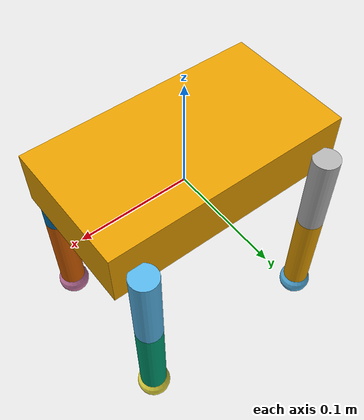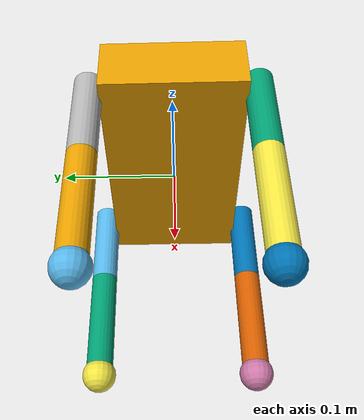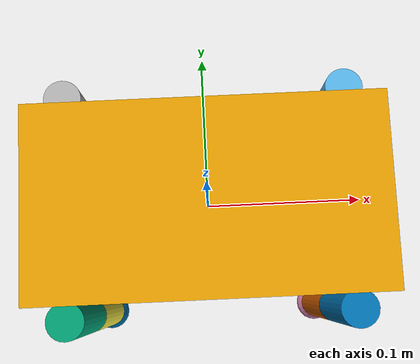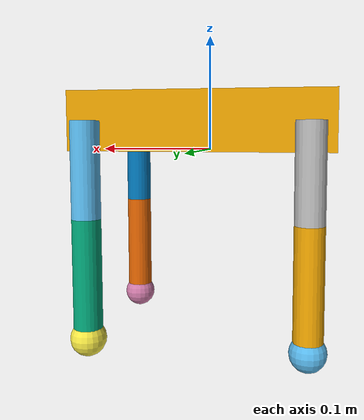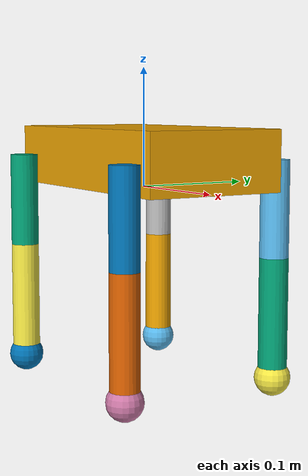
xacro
<?xml version="1.0"?>
<robot name="mechdog" xmlns:xacro="http://www.ros.org/wiki/xacro">

  <!-- ===== Dimensions (meters) ===== -->
  <xacro:property name="body_l" value="0.22"/>
  <xacro:property name="body_w" value="0.12"/>
  <xacro:property name="body_h" value="0.05"/>

  <xacro:property name="hip_offset_x" value="0.09"/>  <!-- front/back from center -->
  <xacro:property name="hip_offset_y" value="0.07"/>  <!-- left/right -->
  <xacro:property name="hip_offset_z" value="0.0"/>

  <xacro:property name="thigh_l" value="0.08"/>
  <xacro:property name="shank_l" value="0.10"/>
  <xacro:property name="leg_r" value="0.012"/>

  <!-- ===== Mass (kg) ===== -->
  <xacro:property name="mass_body" value="1.8"/>
  <xacro:property name="mass_thigh" value="0.14"/>
  <xacro:property name="mass_shank" value="0.12"/>
  <xacro:property name="mass_foot" value="0.03"/>

  <!-- ===== Contact tuning ===== -->
  <xacro:property name="foot_mu" value="2.2"/>
  <xacro:property name="foot_kp" value="180000"/>
  <xacro:property name="foot_kd" value="55"/>

  <!-- ===== Joint dynamics ===== -->
  <xacro:property name="joint_damping" value="0.8"/>
  <xacro:property name="joint_friction" value="0.25"/>

  <!-- ===== Helpers ===== -->
  <xacro:macro name="inertial_box" params="mass x y z">
    <inertial>
      <mass value="${mass}"/>
      <inertia ixx="${mass*(y*y+z*z)/12.0}"
               iyy="${mass*(x*x+z*z)/12.0}"
               izz="${mass*(x*x+y*y)/12.0}"
               ixy="0" ixz="0" iyz="0"/>
      <origin xyz="0 0 0" rpy="0 0 0"/>
    </inertial>
  </xacro:macro>

  <xacro:macro name="inertial_cyl" params="mass r l">
    <inertial>
      <mass value="${mass}"/>
      <inertia ixx="${(mass*(3*r*r + l*l))/12.0}"
               iyy="${(mass*(3*r*r + l*l))/12.0}"
               izz="${(mass*r*r)/2.0}"
               ixy="0" ixz="0" iyz="0"/>
      <origin xyz="0 0 0" rpy="0 0 0"/>
    </inertial>
  </xacro:macro>

  <!-- ===== base_link ===== -->
  <link name="base_link">
    <visual>
      <origin xyz="0 0 ${body_h/2}" rpy="0 0 0"/>
      <geometry><box size="${body_l} ${body_w} ${body_h}"/></geometry>
    </visual>
    <collision>
      <origin xyz="0 0 ${body_h/2}" rpy="0 0 0"/>
      <geometry><box size="${body_l} ${body_w} ${body_h}"/></geometry>
    </collision>
    <xacro:inertial_box mass="${mass_body}" x="${body_l}" y="${body_w}" z="${body_h}"/>
  </link>

  <!-- ===== One leg macro ===== -->
  <!-- side: +1 left, -1 right ; front: +1 front, -1 rear -->
  <xacro:macro name="leg" params="prefix side front">

    <link name="${prefix}_thigh">
      <visual>
        <origin xyz="0 0 ${-thigh_l/2}" rpy="0 0 0"/>
        <geometry><cylinder radius="${leg_r}" length="${thigh_l}"/></geometry>
      </visual>
      <collision>
        <origin xyz="0 0 ${-thigh_l/2}" rpy="0 0 0"/>
        <geometry><cylinder radius="${leg_r}" length="${thigh_l}"/></geometry>
      </collision>
      <xacro:inertial_cyl mass="${mass_thigh}" r="${leg_r}" l="${thigh_l}"/>
    </link>

    <link name="${prefix}_shank">
      <visual>
        <origin xyz="0 0 ${-shank_l/2}" rpy="0 0 0"/>
        <geometry><cylinder radius="${leg_r}" length="${shank_l}"/></geometry>
      </visual>
      <collision>
        <origin xyz="0 0 ${-shank_l/2}" rpy="0 0 0"/>
        <geometry><cylinder radius="${leg_r}" length="${shank_l}"/></geometry>
      </collision>
      <xacro:inertial_cyl mass="${mass_shank}" r="${leg_r}" l="${shank_l}"/>
    </link>

    <link name="${prefix}_foot">
      <visual>
        <origin xyz="0 0 0" rpy="0 0 0"/>
        <geometry><sphere radius="${leg_r*1.25}"/></geometry>
      </visual>
      <collision>
        <origin xyz="0 0 0" rpy="0 0 0"/>
        <geometry><sphere radius="${leg_r*1.25}"/></geometry>
      </collision>
      <inertial>
        <mass value="${mass_foot}"/>
        <inertia ixx="3e-5" iyy="3e-5" izz="3e-5" ixy="0" ixz="0" iyz="0"/>
        <origin xyz="0 0 0" rpy="0 0 0"/>
      </inertial>
    </link>

    <joint name="${prefix}_hip_joint" type="revolute">
      <parent link="base_link"/>
      <child link="${prefix}_thigh"/>
      <origin xyz="${front*hip_offset_x} ${side*hip_offset_y} ${hip_offset_z + body_h/2}" rpy="0 0 0"/>
      <axis xyz="0 1 0"/>
      <limit lower="-1.4" upper="1.4" effort="6" velocity="6"/>
      <dynamics damping="${joint_damping}" friction="${joint_friction}"/>
    </joint>

    <joint name="${prefix}_knee_joint" type="revolute">
      <parent link="${prefix}_thigh"/>
      <child link="${prefix}_shank"/>
      <origin xyz="0 0 ${-thigh_l}" rpy="0 0 0"/>
      <axis xyz="0 1 0"/>
      <limit lower="-2.2" upper="0.15" effort="6" velocity="6"/>
      <dynamics damping="${joint_damping}" friction="${joint_friction}"/>
    </joint>

    <joint name="${prefix}_ankle_fixed" type="fixed">
      <parent link="${prefix}_shank"/>
      <child link="${prefix}_foot"/>
      <origin xyz="0 0 ${-shank_l}" rpy="0 0 0"/>
    </joint>

    <!-- Foot contact/friction tuning -->
    <gazebo reference="${prefix}_foot">
      <mu1>${foot_mu}</mu1>
      <mu2>${foot_mu}</mu2>
      <kp>${foot_kp}</kp>
      <kd>${foot_kd}</kd>
    </gazebo>
  </xacro:macro>

  <!-- 4 legs -->
  <xacro:leg prefix="fl" side="1"  front="1"/>
  <xacro:leg prefix="fr" side="-1" front="1"/>
  <xacro:leg prefix="rl" side="1"  front="-1"/>
  <xacro:leg prefix="rr" side="-1" front="-1"/>

  <!-- ROS2 control wiring for Gazebo -->
  <ros2_control name="MechDogSystem" type="system">
    <hardware>
      <plugin>gz_ros2_control/GazeboSimSystem</plugin>
    </hardware>

    <joint name="fl_hip_joint">
      <command_interface name="position"/>
      <state_interface name="position"/>
      <state_interface name="velocity"/>
    </joint>
    <joint name="fl_knee_joint">
      <command_interface name="position"/>
      <state_interface name="position"/>
      <state_interface name="velocity"/>
    </joint>

    <joint name="fr_hip_joint">
      <command_interface name="position"/>
      <state_interface name="position"/>
      <state_interface name="velocity"/>
    </joint>
    <joint name="fr_knee_joint">
      <command_interface name="position"/>
      <state_interface name="position"/>
      <state_interface name="velocity"/>
    </joint>

    <joint name="rl_hip_joint">
      <command_interface name="position"/>
      <state_interface name="position"/>
      <state_interface name="velocity"/>
    </joint>
    <joint name="rl_knee_joint">
      <command_interface name="position"/>
      <state_interface name="position"/>
      <state_interface name="velocity"/>
    </joint>

    <joint name="rr_hip_joint">
      <command_interface name="position"/>
      <state_interface name="position"/>
      <state_interface name="velocity"/>
    </joint>
    <joint name="rr_knee_joint">
      <command_interface name="position"/>
      <state_interface name="position"/>
      <state_interface name="velocity"/>
    </joint>
  </ros2_control>

  <!-- Gazebo ros2_control plugin -->
  <gazebo>
    <plugin filename="libgz_ros2_control-system.so" name="gz_ros2_control::GazeboSimROS2ControlPlugin">
      <parameters>$(find mechdog_control)/config/controllers.yaml</parameters>
    </plugin>
  </gazebo>

</robot>
